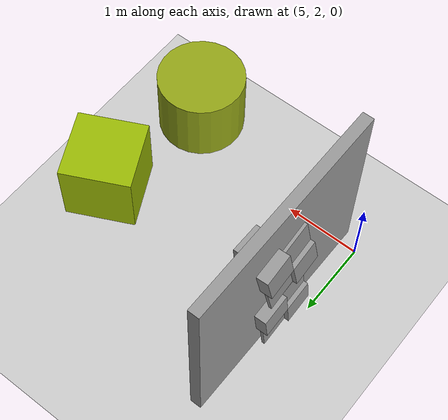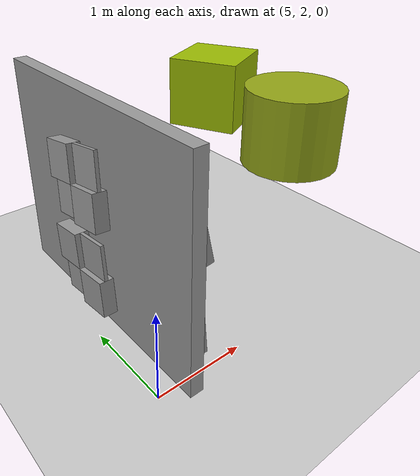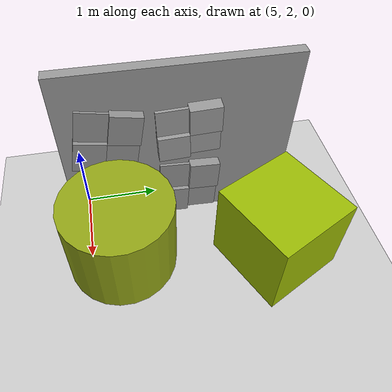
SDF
<sdf version="1.7">
 <world name="default">
  <model name="demo_clean">
   <static>1</static>
   <link name="Wall_10">
    <collision name="Wall_10_Collision">
     <geometry><box><size>3 0.15 2.5</size></box></geometry>
     <pose>0 0 1.25 0 -0 0</pose>
     <surface>
      <friction>
       <ode><mu>1</mu><mu2>1</mu2><fdir1>0 0 0</fdir1><slip1>0</slip1><slip2>0</slip2></ode>
       <torsional>
        <coefficient>1</coefficient>
        <patch_radius>0</patch_radius>
        <surface_radius>0</surface_radius>
        <use_patch_radius>1</use_patch_radius>
        <ode><slip>0</slip></ode>
       </torsional>
      </friction>
      <bounce><restitution_coefficient>0</restitution_coefficient><threshold>1e+06</threshold></bounce>
      <contact>
       <collide_without_contact>0</collide_without_contact>
       <collide_without_contact_bitmask>1</collide_without_contact_bitmask>
       <collide_bitmask>1</collide_bitmask>
       <ode>
        <soft_cfm>0</soft_cfm>
        <soft_erp>0.2</soft_erp>
        <kp>1e+13</kp>
        <kd>1</kd>
        <max_vel>0.01</max_vel>
        <min_depth>0</min_depth>
       </ode>
       <bullet>
        <split_impulse>1</split_impulse>
        <split_impulse_penetration_threshold>-0.01</split_impulse_penetration_threshold>
        <soft_cfm>0</soft_cfm>
        <soft_erp>0.2</soft_erp>
        <kp>1e+13</kp>
        <kd>1</kd>
       </bullet>
      </contact>
     </surface>
    </collision>
    <visual name="Wall_10_Visual">
     <geometry><box><size>3 0.15 2.5</size></box></geometry>
     <material>
      <script><name>Gazebo/Grey</name><uri>file://media/materials/scripts/gazebo.material</uri></script>
      <ambient>1 1 1 1</ambient>
      <shader type="pixel"><normal_map>default</normal_map></shader>
     </material>
     <pose>0 0 1.25 0 -0 0</pose>
    </visual>
    <pose>5.30351 3.31618 0 0 0 -1.5708</pose>
   </link>
  </model>
  <model name="static_cylinder_4">
   <pose>7.08435 2.47073 2 0 -0 0.105393</pose>
   <static>1</static>
   <allow_auto_disable>0</allow_auto_disable>
   <link name="link">
    <collision name="collision">
     <geometry><cylinder><radius>0.5</radius><length>0.8</length></cylinder></geometry>
     <max_contacts>20</max_contacts>
    </collision>
    <visual name="visual">
     <geometry><cylinder><radius>0.5</radius><length>0.8</length></cylinder></geometry>
     <material>
      <ambient>0.580392 0.65098 0.0901961 1</ambient>
      <diffuse>0.580392 0.65098 0.0901961 1</diffuse>
     </material>
    </visual>
   </link>
  </model>
  <model name="dyn_box_9">
   <pose>7.29353 3.8724 2 0 -0 0.454486</pose>
   <static>1</static>
   <allow_auto_disable>0</allow_auto_disable>
   <link name="link">
    <collision name="collision">
     <geometry><box><size>0.8 0.8 0.8</size></box></geometry>
     <max_contacts>20</max_contacts>
    </collision>
    <visual name="visual">
     <geometry><box><size>0.8 0.8 0.8</size></box></geometry>
     <material>
      <ambient>0.611765 0.733333 0.0156863 1</ambient>
      <diffuse>0.611765 0.733333 0.0156863 1</diffuse>
     </material>
    </visual>
   </link>
  </model>
  <model name="ground_plane">
   <static>1</static>
   <link name="link">
    <collision name="collision">
     <geometry><plane><normal>0 0 1</normal><size>100 100</size></plane></geometry>
     <surface>
      <contact><collide_bitmask>65535</collide_bitmask></contact>
      <friction><ode><mu>100</mu><mu2>50</mu2></ode></friction>
     </surface>
    </collision>
    <visual name="visual">
     <cast_shadows>0</cast_shadows>
     <geometry><plane><normal>0 0 1</normal><size>100 100</size></plane></geometry>
     <material>
      <script><uri>file://media/materials/scripts/gazebo.material</uri><name>Gazebo/Grey</name></script>
     </material>
    </visual>
   </link>
  </model>
  <model name="wall_slate_25">
   <static>1</static>
   <link name="link_0">
    <inertial><mass>1</mass></inertial>
    <gravity>0</gravity>
    <visual name="visual">
     <pose>0 0.2 0.2 0 -0 0</pose>
     <geometry><box><size>0.16 0.4 0.4</size></box></geometry>
     <material>
      <lighting>1</lighting>
      <script><uri>file://media/materials/scripts/gazebo.material</uri><name>Gazebo/Grey</name></script>
      <shader type="pixel"><normal_map>__default__</normal_map></shader>
      <ambient>0.3 0.3 0.3 1</ambient>
      <diffuse>0.7 0.7 0.7 1</diffuse>
      <specular>0.01 0.01 0.01 1</specular>
      <emissive>0 0 0 1</emissive>
     </material>
    </visual>
    <visual name="ModelPreview_0::link_0::visual_1">
     <pose>0 0.2 -0.2 0 -0 0</pose>
     <geometry><box><size>0.04 0.4 0.4</size></box></geometry>
     <material>
      <lighting>1</lighting>
      <script><uri>file://media/materials/scripts/gazebo.material</uri><name>Gazebo/Grey</name></script>
      <shader type="pixel"><normal_map>__default__</normal_map></shader>
      <ambient>0.3 0.3 0.3 1</ambient>
      <diffuse>0.7 0.7 0.7 1</diffuse>
      <specular>0.01 0.01 0.01 1</specular>
      <emissive>0 0 0 1</emissive>
     </material>
    </visual>
    <visual name="ModelPreview_0::link_0::visual_2">
     <pose>0 -0.2 0.2 0 -0 0</pose>
     <geometry><box><size>0.04 0.4 0.4</size></box></geometry>
     <material>
      <lighting>1</lighting>
      <script><uri>file://media/materials/scripts/gazebo.material</uri><name>Gazebo/Grey</name></script>
      <shader type="pixel"><normal_map>__default__</normal_map></shader>
      <ambient>0.3 0.3 0.3 1</ambient>
      <diffuse>0.7 0.7 0.7 1</diffuse>
      <specular>0.01 0.01 0.01 1</specular>
      <emissive>0 0 0 1</emissive>
     </material>
    </visual>
    <visual name="ModelPreview_0::link_0::visual_3">
     <pose>0 -0.2 -0.2 0 -0 0</pose>
     <geometry><box><size>0.16 0.4 0.4</size></box></geometry>
     <material>
      <lighting>1</lighting>
      <script><uri>file://media/materials/scripts/gazebo.material</uri><name>Gazebo/Grey</name></script>
      <shader type="pixel"><normal_map>__default__</normal_map></shader>
      <ambient>0.3 0.3 0.3 1</ambient>
      <diffuse>0.7 0.7 0.7 1</diffuse>
      <specular>0.01 0.01 0.01 1</specular>
      <emissive>0 0 0 1</emissive>
     </material>
    </visual>
    <collision name="collision_2">
     <pose>0 -0.2 0.2 0 -0 0</pose>
     <geometry><box><size>0.04 0.4 0.4</size></box></geometry>
     <surface>
      <friction>
       <ode><mu>1</mu><mu2>1</mu2><fdir1>0 0 0</fdir1><slip1>0</slip1><slip2>0</slip2></ode>
       <torsional>
        <coefficient>1</coefficient>
        <patch_radius>0</patch_radius>
        <surface_radius>0</surface_radius>
        <use_patch_radius>1</use_patch_radius>
        <ode><slip>0</slip></ode>
       </torsional>
      </friction>
      <bounce><restitution_coefficient>0</restitution_coefficient><threshold>1e+06</threshold></bounce>
      <contact>
       <collide_without_contact>0</collide_without_contact>
       <collide_without_contact_bitmask>1</collide_without_contact_bitmask>
       <collide_bitmask>1</collide_bitmask>
       <ode>
        <soft_cfm>0</soft_cfm>
        <soft_erp>0.2</soft_erp>
        <kp>1e+13</kp>
        <kd>1</kd>
        <max_vel>0.01</max_vel>
        <min_depth>0</min_depth>
       </ode>
       <bullet>
        <split_impulse>1</split_impulse>
        <split_impulse_penetration_threshold>-0.01</split_impulse_penetration_threshold>
        <soft_cfm>0</soft_cfm>
        <soft_erp>0.2</soft_erp>
        <kp>1e+13</kp>
        <kd>1</kd>
       </bullet>
      </contact>
     </surface>
    </collision>
    <collision name="collision_1">
     <pose>0 0.2 -0.2 0 -0 0</pose>
     <geometry><box><size>0.04 0.4 0.4</size></box></geometry>
     <surface>
      <friction>
       <ode><mu>1</mu><mu2>1</mu2><fdir1>0 0 0</fdir1><slip1>0</slip1><slip2>0</slip2></ode>
       <torsional>
        <coefficient>1</coefficient>
        <patch_radius>0</patch_radius>
        <surface_radius>0</surface_radius>
        <use_patch_radius>1</use_patch_radius>
        <ode><slip>0</slip></ode>
       </torsional>
      </friction>
      <bounce><restitution_coefficient>0</restitution_coefficient><threshold>1e+06</threshold></bounce>
      <contact>
       <collide_without_contact>0</collide_without_contact>
       <collide_without_contact_bitmask>1</collide_without_contact_bitmask>
       <collide_bitmask>1</collide_bitmask>
       <ode>
        <soft_cfm>0</soft_cfm>
        <soft_erp>0.2</soft_erp>
        <kp>1e+13</kp>
        <kd>1</kd>
        <max_vel>0.01</max_vel>
        <min_depth>0</min_depth>
       </ode>
       <bullet>
        <split_impulse>1</split_impulse>
        <split_impulse_penetration_threshold>-0.01</split_impulse_penetration_threshold>
        <soft_cfm>0</soft_cfm>
        <soft_erp>0.2</soft_erp>
        <kp>1e+13</kp>
        <kd>1</kd>
       </bullet>
      </contact>
     </surface>
    </collision>
    <collision name="collision_4">
     <pose>0 0.2 0.2 0 -0 0</pose>
     <geometry><box><size>0.16 0.4 0.4</size></box></geometry>
     <surface>
      <friction>
       <ode><mu>1</mu><mu2>1</mu2><fdir1>0 0 0</fdir1><slip1>0</slip1><slip2>0</slip2></ode>
       <torsional>
        <coefficient>1</coefficient>
        <patch_radius>0</patch_radius>
        <surface_radius>0</surface_radius>
        <use_patch_radius>1</use_patch_radius>
        <ode><slip>0</slip></ode>
       </torsional>
      </friction>
      <bounce><restitution_coefficient>0</restitution_coefficient><threshold>1e+06</threshold></bounce>
      <contact>
       <collide_without_contact>0</collide_without_contact>
       <collide_without_contact_bitmask>1</collide_without_contact_bitmask>
       <collide_bitmask>1</collide_bitmask>
       <ode>
        <soft_cfm>0</soft_cfm>
        <soft_erp>0.2</soft_erp>
        <kp>1e+13</kp>
        <kd>1</kd>
        <max_vel>0.01</max_vel>
        <min_depth>0</min_depth>
       </ode>
       <bullet>
        <split_impulse>1</split_impulse>
        <split_impulse_penetration_threshold>-0.01</split_impulse_penetration_threshold>
        <soft_cfm>0</soft_cfm>
        <soft_erp>0.2</soft_erp>
        <kp>1e+13</kp>
        <kd>1</kd>
       </bullet>
      </contact>
     </surface>
    </collision>
    <collision name="collision_3">
     <pose>0 -0.2 -0.2 0 -0 0</pose>
     <geometry><box><size>0.16 0.4 0.4</size></box></geometry>
     <surface>
      <friction>
       <ode><mu>1</mu><mu2>1</mu2><fdir1>0 0 0</fdir1><slip1>0</slip1><slip2>0</slip2></ode>
       <torsional>
        <coefficient>1</coefficient>
        <patch_radius>0</patch_radius>
        <surface_radius>0</surface_radius>
        <use_patch_radius>1</use_patch_radius>
        <ode><slip>0</slip></ode>
       </torsional>
      </friction>
      <bounce><restitution_coefficient>0</restitution_coefficient><threshold>1e+06</threshold></bounce>
      <contact>
       <collide_without_contact>0</collide_without_contact>
       <collide_without_contact_bitmask>1</collide_without_contact_bitmask>
       <collide_bitmask>1</collide_bitmask>
       <ode>
        <soft_cfm>0</soft_cfm>
        <soft_erp>0.2</soft_erp>
        <kp>1e+13</kp>
        <kd>1</kd>
        <max_vel>0.01</max_vel>
        <min_depth>0</min_depth>
       </ode>
       <bullet>
        <split_impulse>1</split_impulse>
        <split_impulse_penetration_threshold>-0.01</split_impulse_penetration_threshold>
        <soft_cfm>0</soft_cfm>
        <soft_erp>0.2</soft_erp>
        <kp>1e+13</kp>
        <kd>1</kd>
       </bullet>
      </contact>
     </surface>
    </collision>
   </link>
   <pose>5.47851 2.41618 0.6 -0.16 0.04 0.0049</pose>
  </model>
  <model name="wall_slate_36">
   <static>1</static>
   <link name="link_0">
    <inertial><mass>1</mass></inertial>
    <gravity>0</gravity>
    <visual name="visual">
     <pose>0 0.2 0.2 0 -0 0</pose>
     <geometry><box><size>0.16 0.4 0.4</size></box></geometry>
     <material>
      <lighting>1</lighting>
      <script><uri>file://media/materials/scripts/gazebo.material</uri><name>Gazebo/Grey</name></script>
      <shader type="pixel"><normal_map>__default__</normal_map></shader>
      <ambient>0.3 0.3 0.3 1</ambient>
      <diffuse>0.7 0.7 0.7 1</diffuse>
      <specular>0.01 0.01 0.01 1</specular>
      <emissive>0 0 0 1</emissive>
     </material>
    </visual>
    <visual name="ModelPreview_0::link_0::visual_1">
     <pose>0 0.2 -0.2 0 -0 0</pose>
     <geometry><box><size>0.04 0.4 0.4</size></box></geometry>
     <material>
      <lighting>1</lighting>
      <script><uri>file://media/materials/scripts/gazebo.material</uri><name>Gazebo/Grey</name></script>
      <shader type="pixel"><normal_map>__default__</normal_map></shader>
      <ambient>0.3 0.3 0.3 1</ambient>
      <diffuse>0.7 0.7 0.7 1</diffuse>
      <specular>0.01 0.01 0.01 1</specular>
      <emissive>0 0 0 1</emissive>
     </material>
    </visual>
    <visual name="ModelPreview_0::link_0::visual_2">
     <pose>0 -0.2 0.2 0 -0 0</pose>
     <geometry><box><size>0.04 0.4 0.4</size></box></geometry>
     <material>
      <lighting>1</lighting>
      <script><uri>file://media/materials/scripts/gazebo.material</uri><name>Gazebo/Grey</name></script>
      <shader type="pixel"><normal_map>__default__</normal_map></shader>
      <ambient>0.3 0.3 0.3 1</ambient>
      <diffuse>0.7 0.7 0.7 1</diffuse>
      <specular>0.01 0.01 0.01 1</specular>
      <emissive>0 0 0 1</emissive>
     </material>
    </visual>
    <visual name="ModelPreview_0::link_0::visual_3">
     <pose>0 -0.2 -0.2 0 -0 0</pose>
     <geometry><box><size>0.16 0.4 0.4</size></box></geometry>
     <material>
      <lighting>1</lighting>
      <script><uri>file://media/materials/scripts/gazebo.material</uri><name>Gazebo/Grey</name></script>
      <shader type="pixel"><normal_map>__default__</normal_map></shader>
      <ambient>0.3 0.3 0.3 1</ambient>
      <diffuse>0.7 0.7 0.7 1</diffuse>
      <specular>0.01 0.01 0.01 1</specular>
      <emissive>0 0 0 1</emissive>
     </material>
    </visual>
    <collision name="collision_2">
     <pose>0 -0.2 0.2 0 -0 0</pose>
     <geometry><box><size>0.04 0.4 0.4</size></box></geometry>
     <surface>
      <friction>
       <ode><mu>1</mu><mu2>1</mu2><fdir1>0 0 0</fdir1><slip1>0</slip1><slip2>0</slip2></ode>
       <torsional>
        <coefficient>1</coefficient>
        <patch_radius>0</patch_radius>
        <surface_radius>0</surface_radius>
        <use_patch_radius>1</use_patch_radius>
        <ode><slip>0</slip></ode>
       </torsional>
      </friction>
      <bounce><restitution_coefficient>0</restitution_coefficient><threshold>1e+06</threshold></bounce>
      <contact>
       <collide_without_contact>0</collide_without_contact>
       <collide_without_contact_bitmask>1</collide_without_contact_bitmask>
       <collide_bitmask>1</collide_bitmask>
       <ode>
        <soft_cfm>0</soft_cfm>
        <soft_erp>0.2</soft_erp>
        <kp>1e+13</kp>
        <kd>1</kd>
        <max_vel>0.01</max_vel>
        <min_depth>0</min_depth>
       </ode>
       <bullet>
        <split_impulse>1</split_impulse>
        <split_impulse_penetration_threshold>-0.01</split_impulse_penetration_threshold>
        <soft_cfm>0</soft_cfm>
        <soft_erp>0.2</soft_erp>
        <kp>1e+13</kp>
        <kd>1</kd>
       </bullet>
      </contact>
     </surface>
    </collision>
    <collision name="collision_1">
     <pose>0 0.2 -0.2 0 -0 0</pose>
     <geometry><box><size>0.04 0.4 0.4</size></box></geometry>
     <surface>
      <friction>
       <ode><mu>1</mu><mu2>1</mu2><fdir1>0 0 0</fdir1><slip1>0</slip1><slip2>0</slip2></ode>
       <torsional>
        <coefficient>1</coefficient>
        <patch_radius>0</patch_radius>
        <surface_radius>0</surface_radius>
        <use_patch_radius>1</use_patch_radius>
        <ode><slip>0</slip></ode>
       </torsional>
      </friction>
      <bounce><restitution_coefficient>0</restitution_coefficient><threshold>1e+06</threshold></bounce>
      <contact>
       <collide_without_contact>0</collide_without_contact>
       <collide_without_contact_bitmask>1</collide_without_contact_bitmask>
       <collide_bitmask>1</collide_bitmask>
       <ode>
        <soft_cfm>0</soft_cfm>
        <soft_erp>0.2</soft_erp>
        <kp>1e+13</kp>
        <kd>1</kd>
        <max_vel>0.01</max_vel>
        <min_depth>0</min_depth>
       </ode>
       <bullet>
        <split_impulse>1</split_impulse>
        <split_impulse_penetration_threshold>-0.01</split_impulse_penetration_threshold>
        <soft_cfm>0</soft_cfm>
        <soft_erp>0.2</soft_erp>
        <kp>1e+13</kp>
        <kd>1</kd>
       </bullet>
      </contact>
     </surface>
    </collision>
    <collision name="collision_4">
     <pose>0 0.2 0.2 0 -0 0</pose>
     <geometry><box><size>0.16 0.4 0.4</size></box></geometry>
     <surface>
      <friction>
       <ode><mu>1</mu><mu2>1</mu2><fdir1>0 0 0</fdir1><slip1>0</slip1><slip2>0</slip2></ode>
       <torsional>
        <coefficient>1</coefficient>
        <patch_radius>0</patch_radius>
        <surface_radius>0</surface_radius>
        <use_patch_radius>1</use_patch_radius>
        <ode><slip>0</slip></ode>
       </torsional>
      </friction>
      <bounce><restitution_coefficient>0</restitution_coefficient><threshold>1e+06</threshold></bounce>
      <contact>
       <collide_without_contact>0</collide_without_contact>
       <collide_without_contact_bitmask>1</collide_without_contact_bitmask>
       <collide_bitmask>1</collide_bitmask>
       <ode>
        <soft_cfm>0</soft_cfm>
        <soft_erp>0.2</soft_erp>
        <kp>1e+13</kp>
        <kd>1</kd>
        <max_vel>0.01</max_vel>
        <min_depth>0</min_depth>
       </ode>
       <bullet>
        <split_impulse>1</split_impulse>
        <split_impulse_penetration_threshold>-0.01</split_impulse_penetration_threshold>
        <soft_cfm>0</soft_cfm>
        <soft_erp>0.2</soft_erp>
        <kp>1e+13</kp>
        <kd>1</kd>
       </bullet>
      </contact>
     </surface>
    </collision>
    <collision name="collision_3">
     <pose>0 -0.2 -0.2 0 -0 0</pose>
     <geometry><box><size>0.16 0.4 0.4</size></box></geometry>
     <surface>
      <friction>
       <ode><mu>1</mu><mu2>1</mu2><fdir1>0 0 0</fdir1><slip1>0</slip1><slip2>0</slip2></ode>
       <torsional>
        <coefficient>1</coefficient>
        <patch_radius>0</patch_radius>
        <surface_radius>0</surface_radius>
        <use_patch_radius>1</use_patch_radius>
        <ode><slip>0</slip></ode>
       </torsional>
      </friction>
      <bounce><restitution_coefficient>0</restitution_coefficient><threshold>1e+06</threshold></bounce>
      <contact>
       <collide_without_contact>0</collide_without_contact>
       <collide_without_contact_bitmask>1</collide_without_contact_bitmask>
       <collide_bitmask>1</collide_bitmask>
       <ode>
        <soft_cfm>0</soft_cfm>
        <soft_erp>0.2</soft_erp>
        <kp>1e+13</kp>
        <kd>1</kd>
        <max_vel>0.01</max_vel>
        <min_depth>0</min_depth>
       </ode>
       <bullet>
        <split_impulse>1</split_impulse>
        <split_impulse_penetration_threshold>-0.01</split_impulse_penetration_threshold>
        <soft_cfm>0</soft_cfm>
        <soft_erp>0.2</soft_erp>
        <kp>1e+13</kp>
        <kd>1</kd>
       </bullet>
      </contact>
     </surface>
    </collision>
   </link>
   <pose>5.47851 3.41618 0.6 -0.06 -0.08 0.0049</pose>
  </model>
  <model name="wall_slate_45">
   <static>1</static>
   <link name="link_0">
    <inertial><mass>1</mass></inertial>
    <gravity>0</gravity>
    <visual name="visual">
     <pose>0 0.2 0.2 0 -0 0</pose>
     <geometry><box><size>0.16 0.4 0.4</size></box></geometry>
     <material>
      <lighting>1</lighting>
      <script><uri>file://media/materials/scripts/gazebo.material</uri><name>Gazebo/Grey</name></script>
      <shader type="pixel"><normal_map>__default__</normal_map></shader>
      <ambient>0.3 0.3 0.3 1</ambient>
      <diffuse>0.7 0.7 0.7 1</diffuse>
      <specular>0.01 0.01 0.01 1</specular>
      <emissive>0 0 0 1</emissive>
     </material>
    </visual>
    <visual name="ModelPreview_0::link_0::visual_1">
     <pose>0 0.2 -0.2 0 -0 0</pose>
     <geometry><box><size>0.04 0.4 0.4</size></box></geometry>
     <material>
      <lighting>1</lighting>
      <script><uri>file://media/materials/scripts/gazebo.material</uri><name>Gazebo/Grey</name></script>
      <shader type="pixel"><normal_map>__default__</normal_map></shader>
      <ambient>0.3 0.3 0.3 1</ambient>
      <diffuse>0.7 0.7 0.7 1</diffuse>
      <specular>0.01 0.01 0.01 1</specular>
      <emissive>0 0 0 1</emissive>
     </material>
    </visual>
    <visual name="ModelPreview_0::link_0::visual_2">
     <pose>0 -0.2 0.2 0 -0 0</pose>
     <geometry><box><size>0.04 0.4 0.4</size></box></geometry>
     <material>
      <lighting>1</lighting>
      <script><uri>file://media/materials/scripts/gazebo.material</uri><name>Gazebo/Grey</name></script>
      <shader type="pixel"><normal_map>__default__</normal_map></shader>
      <ambient>0.3 0.3 0.3 1</ambient>
      <diffuse>0.7 0.7 0.7 1</diffuse>
      <specular>0.01 0.01 0.01 1</specular>
      <emissive>0 0 0 1</emissive>
     </material>
    </visual>
    <visual name="ModelPreview_0::link_0::visual_3">
     <pose>0 -0.2 -0.2 0 -0 0</pose>
     <geometry><box><size>0.16 0.4 0.4</size></box></geometry>
     <material>
      <lighting>1</lighting>
      <script><uri>file://media/materials/scripts/gazebo.material</uri><name>Gazebo/Grey</name></script>
      <shader type="pixel"><normal_map>__default__</normal_map></shader>
      <ambient>0.3 0.3 0.3 1</ambient>
      <diffuse>0.7 0.7 0.7 1</diffuse>
      <specular>0.01 0.01 0.01 1</specular>
      <emissive>0 0 0 1</emissive>
     </material>
    </visual>
    <collision name="collision_2">
     <pose>0 -0.2 0.2 0 -0 0</pose>
     <geometry><box><size>0.04 0.4 0.4</size></box></geometry>
     <surface>
      <friction>
       <ode><mu>1</mu><mu2>1</mu2><fdir1>0 0 0</fdir1><slip1>0</slip1><slip2>0</slip2></ode>
       <torsional>
        <coefficient>1</coefficient>
        <patch_radius>0</patch_radius>
        <surface_radius>0</surface_radius>
        <use_patch_radius>1</use_patch_radius>
        <ode><slip>0</slip></ode>
       </torsional>
      </friction>
      <bounce><restitution_coefficient>0</restitution_coefficient><threshold>1e+06</threshold></bounce>
      <contact>
       <collide_without_contact>0</collide_without_contact>
       <collide_without_contact_bitmask>1</collide_without_contact_bitmask>
       <collide_bitmask>1</collide_bitmask>
       <ode>
        <soft_cfm>0</soft_cfm>
        <soft_erp>0.2</soft_erp>
        <kp>1e+13</kp>
        <kd>1</kd>
        <max_vel>0.01</max_vel>
        <min_depth>0</min_depth>
       </ode>
       <bullet>
        <split_impulse>1</split_impulse>
        <split_impulse_penetration_threshold>-0.01</split_impulse_penetration_threshold>
        <soft_cfm>0</soft_cfm>
        <soft_erp>0.2</soft_erp>
        <kp>1e+13</kp>
        <kd>1</kd>
       </bullet>
      </contact>
     </surface>
    </collision>
    <collision name="collision_1">
     <pose>0 0.2 -0.2 0 -0 0</pose>
     <geometry><box><size>0.04 0.4 0.4</size></box></geometry>
     <surface>
      <friction>
       <ode><mu>1</mu><mu2>1</mu2><fdir1>0 0 0</fdir1><slip1>0</slip1><slip2>0</slip2></ode>
       <torsional>
        <coefficient>1</coefficient>
        <patch_radius>0</patch_radius>
        <surface_radius>0</surface_radius>
        <use_patch_radius>1</use_patch_radius>
        <ode><slip>0</slip></ode>
       </torsional>
      </friction>
      <bounce><restitution_coefficient>0</restitution_coefficient><threshold>1e+06</threshold></bounce>
      <contact>
       <collide_without_contact>0</collide_without_contact>
       <collide_without_contact_bitmask>1</collide_without_contact_bitmask>
       <collide_bitmask>1</collide_bitmask>
       <ode>
        <soft_cfm>0</soft_cfm>
        <soft_erp>0.2</soft_erp>
        <kp>1e+13</kp>
        <kd>1</kd>
        <max_vel>0.01</max_vel>
        <min_depth>0</min_depth>
       </ode>
       <bullet>
        <split_impulse>1</split_impulse>
        <split_impulse_penetration_threshold>-0.01</split_impulse_penetration_threshold>
        <soft_cfm>0</soft_cfm>
        <soft_erp>0.2</soft_erp>
        <kp>1e+13</kp>
        <kd>1</kd>
       </bullet>
      </contact>
     </surface>
    </collision>
    <collision name="collision_4">
     <pose>0 0.2 0.2 0 -0 0</pose>
     <geometry><box><size>0.16 0.4 0.4</size></box></geometry>
     <surface>
      <friction>
       <ode><mu>1</mu><mu2>1</mu2><fdir1>0 0 0</fdir1><slip1>0</slip1><slip2>0</slip2></ode>
       <torsional>
        <coefficient>1</coefficient>
        <patch_radius>0</patch_radius>
        <surface_radius>0</surface_radius>
        <use_patch_radius>1</use_patch_radius>
        <ode><slip>0</slip></ode>
       </torsional>
      </friction>
      <bounce><restitution_coefficient>0</restitution_coefficient><threshold>1e+06</threshold></bounce>
      <contact>
       <collide_without_contact>0</collide_without_contact>
       <collide_without_contact_bitmask>1</collide_without_contact_bitmask>
       <collide_bitmask>1</collide_bitmask>
       <ode>
        <soft_cfm>0</soft_cfm>
        <soft_erp>0.2</soft_erp>
        <kp>1e+13</kp>
        <kd>1</kd>
        <max_vel>0.01</max_vel>
        <min_depth>0</min_depth>
       </ode>
       <bullet>
        <split_impulse>1</split_impulse>
        <split_impulse_penetration_threshold>-0.01</split_impulse_penetration_threshold>
        <soft_cfm>0</soft_cfm>
        <soft_erp>0.2</soft_erp>
        <kp>1e+13</kp>
        <kd>1</kd>
       </bullet>
      </contact>
     </surface>
    </collision>
    <collision name="collision_3">
     <pose>0 -0.2 -0.2 0 -0 0</pose>
     <geometry><box><size>0.16 0.4 0.4</size></box></geometry>
     <surface>
      <friction>
       <ode><mu>1</mu><mu2>1</mu2><fdir1>0 0 0</fdir1><slip1>0</slip1><slip2>0</slip2></ode>
       <torsional>
        <coefficient>1</coefficient>
        <patch_radius>0</patch_radius>
        <surface_radius>0</surface_radius>
        <use_patch_radius>1</use_patch_radius>
        <ode><slip>0</slip></ode>
       </torsional>
      </friction>
      <bounce><restitution_coefficient>0</restitution_coefficient><threshold>1e+06</threshold></bounce>
      <contact>
       <collide_without_contact>0</collide_without_contact>
       <collide_without_contact_bitmask>1</collide_without_contact_bitmask>
       <collide_bitmask>1</collide_bitmask>
       <ode>
        <soft_cfm>0</soft_cfm>
        <soft_erp>0.2</soft_erp>
        <kp>1e+13</kp>
        <kd>1</kd>
        <max_vel>0.01</max_vel>
        <min_depth>0</min_depth>
       </ode>
       <bullet>
        <split_impulse>1</split_impulse>
        <split_impulse_penetration_threshold>-0.01</split_impulse_penetration_threshold>
        <soft_cfm>0</soft_cfm>
        <soft_erp>0.2</soft_erp>
        <kp>1e+13</kp>
        <kd>1</kd>
       </bullet>
      </contact>
     </surface>
    </collision>
   </link>
   <pose>5.47851 3.41618 1.6 0.04 0.08 0.0049</pose>
  </model>
  <model name="wall_slate_49">
   <static>1</static>
   <link name="link_0">
    <inertial><mass>1</mass></inertial>
    <gravity>0</gravity>
    <visual name="visual">
     <pose>0 0.2 0.2 0 -0 0</pose>
     <geometry><box><size>0.16 0.4 0.4</size></box></geometry>
     <material>
      <lighting>1</lighting>
      <script><uri>file://media/materials/scripts/gazebo.material</uri><name>Gazebo/Grey</name></script>
      <shader type="pixel"><normal_map>__default__</normal_map></shader>
      <ambient>0.3 0.3 0.3 1</ambient>
      <diffuse>0.7 0.7 0.7 1</diffuse>
      <specular>0.01 0.01 0.01 1</specular>
      <emissive>0 0 0 1</emissive>
     </material>
    </visual>
    <visual name="ModelPreview_0::link_0::visual_1">
     <pose>0 0.2 -0.2 0 -0 0</pose>
     <geometry><box><size>0.04 0.4 0.4</size></box></geometry>
     <material>
      <lighting>1</lighting>
      <script><uri>file://media/materials/scripts/gazebo.material</uri><name>Gazebo/Grey</name></script>
      <shader type="pixel"><normal_map>__default__</normal_map></shader>
      <ambient>0.3 0.3 0.3 1</ambient>
      <diffuse>0.7 0.7 0.7 1</diffuse>
      <specular>0.01 0.01 0.01 1</specular>
      <emissive>0 0 0 1</emissive>
     </material>
    </visual>
    <visual name="ModelPreview_0::link_0::visual_2">
     <pose>0 -0.2 0.2 0 -0 0</pose>
     <geometry><box><size>0.04 0.4 0.4</size></box></geometry>
     <material>
      <lighting>1</lighting>
      <script><uri>file://media/materials/scripts/gazebo.material</uri><name>Gazebo/Grey</name></script>
      <shader type="pixel"><normal_map>__default__</normal_map></shader>
      <ambient>0.3 0.3 0.3 1</ambient>
      <diffuse>0.7 0.7 0.7 1</diffuse>
      <specular>0.01 0.01 0.01 1</specular>
      <emissive>0 0 0 1</emissive>
     </material>
    </visual>
    <visual name="ModelPreview_0::link_0::visual_3">
     <pose>0 -0.2 -0.2 0 -0 0</pose>
     <geometry><box><size>0.16 0.4 0.4</size></box></geometry>
     <material>
      <lighting>1</lighting>
      <script><uri>file://media/materials/scripts/gazebo.material</uri><name>Gazebo/Grey</name></script>
      <shader type="pixel"><normal_map>__default__</normal_map></shader>
      <ambient>0.3 0.3 0.3 1</ambient>
      <diffuse>0.7 0.7 0.7 1</diffuse>
      <specular>0.01 0.01 0.01 1</specular>
      <emissive>0 0 0 1</emissive>
     </material>
    </visual>
    <collision name="collision_2">
     <pose>0 -0.2 0.2 0 -0 0</pose>
     <geometry><box><size>0.04 0.4 0.4</size></box></geometry>
     <surface>
      <friction>
       <ode><mu>1</mu><mu2>1</mu2><fdir1>0 0 0</fdir1><slip1>0</slip1><slip2>0</slip2></ode>
       <torsional>
        <coefficient>1</coefficient>
        <patch_radius>0</patch_radius>
        <surface_radius>0</surface_radius>
        <use_patch_radius>1</use_patch_radius>
        <ode><slip>0</slip></ode>
       </torsional>
      </friction>
      <bounce><restitution_coefficient>0</restitution_coefficient><threshold>1e+06</threshold></bounce>
      <contact>
       <collide_without_contact>0</collide_without_contact>
       <collide_without_contact_bitmask>1</collide_without_contact_bitmask>
       <collide_bitmask>1</collide_bitmask>
       <ode>
        <soft_cfm>0</soft_cfm>
        <soft_erp>0.2</soft_erp>
        <kp>1e+13</kp>
        <kd>1</kd>
        <max_vel>0.01</max_vel>
        <min_depth>0</min_depth>
       </ode>
       <bullet>
        <split_impulse>1</split_impulse>
        <split_impulse_penetration_threshold>-0.01</split_impulse_penetration_threshold>
        <soft_cfm>0</soft_cfm>
        <soft_erp>0.2</soft_erp>
        <kp>1e+13</kp>
        <kd>1</kd>
       </bullet>
      </contact>
     </surface>
    </collision>
    <collision name="collision_1">
     <pose>0 0.2 -0.2 0 -0 0</pose>
     <geometry><box><size>0.04 0.4 0.4</size></box></geometry>
     <surface>
      <friction>
       <ode><mu>1</mu><mu2>1</mu2><fdir1>0 0 0</fdir1><slip1>0</slip1><slip2>0</slip2></ode>
       <torsional>
        <coefficient>1</coefficient>
        <patch_radius>0</patch_radius>
        <surface_radius>0</surface_radius>
        <use_patch_radius>1</use_patch_radius>
        <ode><slip>0</slip></ode>
       </torsional>
      </friction>
      <bounce><restitution_coefficient>0</restitution_coefficient><threshold>1e+06</threshold></bounce>
      <contact>
       <collide_without_contact>0</collide_without_contact>
       <collide_without_contact_bitmask>1</collide_without_contact_bitmask>
       <collide_bitmask>1</collide_bitmask>
       <ode>
        <soft_cfm>0</soft_cfm>
        <soft_erp>0.2</soft_erp>
        <kp>1e+13</kp>
        <kd>1</kd>
        <max_vel>0.01</max_vel>
        <min_depth>0</min_depth>
       </ode>
       <bullet>
        <split_impulse>1</split_impulse>
        <split_impulse_penetration_threshold>-0.01</split_impulse_penetration_threshold>
        <soft_cfm>0</soft_cfm>
        <soft_erp>0.2</soft_erp>
        <kp>1e+13</kp>
        <kd>1</kd>
       </bullet>
      </contact>
     </surface>
    </collision>
    <collision name="collision_4">
     <pose>0 0.2 0.2 0 -0 0</pose>
     <geometry><box><size>0.16 0.4 0.4</size></box></geometry>
     <surface>
      <friction>
       <ode><mu>1</mu><mu2>1</mu2><fdir1>0 0 0</fdir1><slip1>0</slip1><slip2>0</slip2></ode>
       <torsional>
        <coefficient>1</coefficient>
        <patch_radius>0</patch_radius>
        <surface_radius>0</surface_radius>
        <use_patch_radius>1</use_patch_radius>
        <ode><slip>0</slip></ode>
       </torsional>
      </friction>
      <bounce><restitution_coefficient>0</restitution_coefficient><threshold>1e+06</threshold></bounce>
      <contact>
       <collide_without_contact>0</collide_without_contact>
       <collide_without_contact_bitmask>1</collide_without_contact_bitmask>
       <collide_bitmask>1</collide_bitmask>
       <ode>
        <soft_cfm>0</soft_cfm>
        <soft_erp>0.2</soft_erp>
        <kp>1e+13</kp>
        <kd>1</kd>
        <max_vel>0.01</max_vel>
        <min_depth>0</min_depth>
       </ode>
       <bullet>
        <split_impulse>1</split_impulse>
        <split_impulse_penetration_threshold>-0.01</split_impulse_penetration_threshold>
        <soft_cfm>0</soft_cfm>
        <soft_erp>0.2</soft_erp>
        <kp>1e+13</kp>
        <kd>1</kd>
       </bullet>
      </contact>
     </surface>
    </collision>
    <collision name="collision_3">
     <pose>0 -0.2 -0.2 0 -0 0</pose>
     <geometry><box><size>0.16 0.4 0.4</size></box></geometry>
     <surface>
      <friction>
       <ode><mu>1</mu><mu2>1</mu2><fdir1>0 0 0</fdir1><slip1>0</slip1><slip2>0</slip2></ode>
       <torsional>
        <coefficient>1</coefficient>
        <patch_radius>0</patch_radius>
        <surface_radius>0</surface_radius>
        <use_patch_radius>1</use_patch_radius>
        <ode><slip>0</slip></ode>
       </torsional>
      </friction>
      <bounce><restitution_coefficient>0</restitution_coefficient><threshold>1e+06</threshold></bounce>
      <contact>
       <collide_without_contact>0</collide_without_contact>
       <collide_without_contact_bitmask>1</collide_without_contact_bitmask>
       <collide_bitmask>1</collide_bitmask>
       <ode>
        <soft_cfm>0</soft_cfm>
        <soft_erp>0.2</soft_erp>
        <kp>1e+13</kp>
        <kd>1</kd>
        <max_vel>0.01</max_vel>
        <min_depth>0</min_depth>
       </ode>
       <bullet>
        <split_impulse>1</split_impulse>
        <split_impulse_penetration_threshold>-0.01</split_impulse_penetration_threshold>
        <soft_cfm>0</soft_cfm>
        <soft_erp>0.2</soft_erp>
        <kp>1e+13</kp>
        <kd>1</kd>
       </bullet>
      </contact>
     </surface>
    </collision>
   </link>
   <pose>5.12851 3.41618 0.6 -0.12 0.02 0.0049</pose>
  </model>
  <model name="wall_slate_73">
   <static>1</static>
   <link name="link_0">
    <inertial><mass>1</mass></inertial>
    <gravity>0</gravity>
    <visual name="visual">
     <pose>0 0.2 0.2 0 -0 0</pose>
     <geometry><box><size>0.16 0.4 0.4</size></box></geometry>
     <material>
      <lighting>1</lighting>
      <script><uri>file://media/materials/scripts/gazebo.material</uri><name>Gazebo/Grey</name></script>
      <shader type="pixel"><normal_map>__default__</normal_map></shader>
      <ambient>0.3 0.3 0.3 1</ambient>
      <diffuse>0.7 0.7 0.7 1</diffuse>
      <specular>0.01 0.01 0.01 1</specular>
      <emissive>0 0 0 1</emissive>
     </material>
    </visual>
    <visual name="ModelPreview_0::link_0::visual_1">
     <pose>0 0.2 -0.2 0 -0 0</pose>
     <geometry><box><size>0.04 0.4 0.4</size></box></geometry>
     <material>
      <lighting>1</lighting>
      <script><uri>file://media/materials/scripts/gazebo.material</uri><name>Gazebo/Grey</name></script>
      <shader type="pixel"><normal_map>__default__</normal_map></shader>
      <ambient>0.3 0.3 0.3 1</ambient>
      <diffuse>0.7 0.7 0.7 1</diffuse>
      <specular>0.01 0.01 0.01 1</specular>
      <emissive>0 0 0 1</emissive>
     </material>
    </visual>
    <visual name="ModelPreview_0::link_0::visual_2">
     <pose>0 -0.2 0.2 0 -0 0</pose>
     <geometry><box><size>0.04 0.4 0.4</size></box></geometry>
     <material>
      <lighting>1</lighting>
      <script><uri>file://media/materials/scripts/gazebo.material</uri><name>Gazebo/Grey</name></script>
      <shader type="pixel"><normal_map>__default__</normal_map></shader>
      <ambient>0.3 0.3 0.3 1</ambient>
      <diffuse>0.7 0.7 0.7 1</diffuse>
      <specular>0.01 0.01 0.01 1</specular>
      <emissive>0 0 0 1</emissive>
     </material>
    </visual>
    <visual name="ModelPreview_0::link_0::visual_3">
     <pose>0 -0.2 -0.2 0 -0 0</pose>
     <geometry><box><size>0.16 0.4 0.4</size></box></geometry>
     <material>
      <lighting>1</lighting>
      <script><uri>file://media/materials/scripts/gazebo.material</uri><name>Gazebo/Grey</name></script>
      <shader type="pixel"><normal_map>__default__</normal_map></shader>
      <ambient>0.3 0.3 0.3 1</ambient>
      <diffuse>0.7 0.7 0.7 1</diffuse>
      <specular>0.01 0.01 0.01 1</specular>
      <emissive>0 0 0 1</emissive>
     </material>
    </visual>
    <collision name="collision_2">
     <pose>0 -0.2 0.2 0 -0 0</pose>
     <geometry><box><size>0.04 0.4 0.4</size></box></geometry>
     <surface>
      <friction>
       <ode><mu>1</mu><mu2>1</mu2><fdir1>0 0 0</fdir1><slip1>0</slip1><slip2>0</slip2></ode>
       <torsional>
        <coefficient>1</coefficient>
        <patch_radius>0</patch_radius>
        <surface_radius>0</surface_radius>
        <use_patch_radius>1</use_patch_radius>
        <ode><slip>0</slip></ode>
       </torsional>
      </friction>
      <bounce><restitution_coefficient>0</restitution_coefficient><threshold>1e+06</threshold></bounce>
      <contact>
       <collide_without_contact>0</collide_without_contact>
       <collide_without_contact_bitmask>1</collide_without_contact_bitmask>
       <collide_bitmask>1</collide_bitmask>
       <ode>
        <soft_cfm>0</soft_cfm>
        <soft_erp>0.2</soft_erp>
        <kp>1e+13</kp>
        <kd>1</kd>
        <max_vel>0.01</max_vel>
        <min_depth>0</min_depth>
       </ode>
       <bullet>
        <split_impulse>1</split_impulse>
        <split_impulse_penetration_threshold>-0.01</split_impulse_penetration_threshold>
        <soft_cfm>0</soft_cfm>
        <soft_erp>0.2</soft_erp>
        <kp>1e+13</kp>
        <kd>1</kd>
       </bullet>
      </contact>
     </surface>
    </collision>
    <collision name="collision_1">
     <pose>0 0.2 -0.2 0 -0 0</pose>
     <geometry><box><size>0.04 0.4 0.4</size></box></geometry>
     <surface>
      <friction>
       <ode><mu>1</mu><mu2>1</mu2><fdir1>0 0 0</fdir1><slip1>0</slip1><slip2>0</slip2></ode>
       <torsional>
        <coefficient>1</coefficient>
        <patch_radius>0</patch_radius>
        <surface_radius>0</surface_radius>
        <use_patch_radius>1</use_patch_radius>
        <ode><slip>0</slip></ode>
       </torsional>
      </friction>
      <bounce><restitution_coefficient>0</restitution_coefficient><threshold>1e+06</threshold></bounce>
      <contact>
       <collide_without_contact>0</collide_without_contact>
       <collide_without_contact_bitmask>1</collide_without_contact_bitmask>
       <collide_bitmask>1</collide_bitmask>
       <ode>
        <soft_cfm>0</soft_cfm>
        <soft_erp>0.2</soft_erp>
        <kp>1e+13</kp>
        <kd>1</kd>
        <max_vel>0.01</max_vel>
        <min_depth>0</min_depth>
       </ode>
       <bullet>
        <split_impulse>1</split_impulse>
        <split_impulse_penetration_threshold>-0.01</split_impulse_penetration_threshold>
        <soft_cfm>0</soft_cfm>
        <soft_erp>0.2</soft_erp>
        <kp>1e+13</kp>
        <kd>1</kd>
       </bullet>
      </contact>
     </surface>
    </collision>
    <collision name="collision_4">
     <pose>0 0.2 0.2 0 -0 0</pose>
     <geometry><box><size>0.16 0.4 0.4</size></box></geometry>
     <surface>
      <friction>
       <ode><mu>1</mu><mu2>1</mu2><fdir1>0 0 0</fdir1><slip1>0</slip1><slip2>0</slip2></ode>
       <torsional>
        <coefficient>1</coefficient>
        <patch_radius>0</patch_radius>
        <surface_radius>0</surface_radius>
        <use_patch_radius>1</use_patch_radius>
        <ode><slip>0</slip></ode>
       </torsional>
      </friction>
      <bounce><restitution_coefficient>0</restitution_coefficient><threshold>1e+06</threshold></bounce>
      <contact>
       <collide_without_contact>0</collide_without_contact>
       <collide_without_contact_bitmask>1</collide_without_contact_bitmask>
       <collide_bitmask>1</collide_bitmask>
       <ode>
        <soft_cfm>0</soft_cfm>
        <soft_erp>0.2</soft_erp>
        <kp>1e+13</kp>
        <kd>1</kd>
        <max_vel>0.01</max_vel>
        <min_depth>0</min_depth>
       </ode>
       <bullet>
        <split_impulse>1</split_impulse>
        <split_impulse_penetration_threshold>-0.01</split_impulse_penetration_threshold>
        <soft_cfm>0</soft_cfm>
        <soft_erp>0.2</soft_erp>
        <kp>1e+13</kp>
        <kd>1</kd>
       </bullet>
      </contact>
     </surface>
    </collision>
    <collision name="collision_3">
     <pose>0 -0.2 -0.2 0 -0 0</pose>
     <geometry><box><size>0.16 0.4 0.4</size></box></geometry>
     <surface>
      <friction>
       <ode><mu>1</mu><mu2>1</mu2><fdir1>0 0 0</fdir1><slip1>0</slip1><slip2>0</slip2></ode>
       <torsional>
        <coefficient>1</coefficient>
        <patch_radius>0</patch_radius>
        <surface_radius>0</surface_radius>
        <use_patch_radius>1</use_patch_radius>
        <ode><slip>0</slip></ode>
       </torsional>
      </friction>
      <bounce><restitution_coefficient>0</restitution_coefficient><threshold>1e+06</threshold></bounce>
      <contact>
       <collide_without_contact>0</collide_without_contact>
       <collide_without_contact_bitmask>1</collide_without_contact_bitmask>
       <collide_bitmask>1</collide_bitmask>
       <ode>
        <soft_cfm>0</soft_cfm>
        <soft_erp>0.2</soft_erp>
        <kp>1e+13</kp>
        <kd>1</kd>
        <max_vel>0.01</max_vel>
        <min_depth>0</min_depth>
       </ode>
       <bullet>
        <split_impulse>1</split_impulse>
        <split_impulse_penetration_threshold>-0.01</split_impulse_penetration_threshold>
        <soft_cfm>0</soft_cfm>
        <soft_erp>0.2</soft_erp>
        <kp>1e+13</kp>
        <kd>1</kd>
       </bullet>
      </contact>
     </surface>
    </collision>
   </link>
   <pose>5.47851 2.41618 1.6 -0.18 -0.1 0.0049</pose>
  </model>
  <model name="wall_slate_92">
   <static>1</static>
   <link name="link_0">
    <inertial><mass>1</mass></inertial>
    <gravity>0</gravity>
    <visual name="visual">
     <pose>0 0.2 0.2 0 -0 0</pose>
     <geometry><box><size>0.16 0.4 0.4</size></box></geometry>
     <material>
      <lighting>1</lighting>
      <script><uri>file://media/materials/scripts/gazebo.material</uri><name>Gazebo/Grey</name></script>
      <shader type="pixel"><normal_map>__default__</normal_map></shader>
      <ambient>0.3 0.3 0.3 1</ambient>
      <diffuse>0.7 0.7 0.7 1</diffuse>
      <specular>0.01 0.01 0.01 1</specular>
      <emissive>0 0 0 1</emissive>
     </material>
    </visual>
    <visual name="ModelPreview_0::link_0::visual_1">
     <pose>0 0.2 -0.2 0 -0 0</pose>
     <geometry><box><size>0.04 0.4 0.4</size></box></geometry>
     <material>
      <lighting>1</lighting>
      <script><uri>file://media/materials/scripts/gazebo.material</uri><name>Gazebo/Grey</name></script>
      <shader type="pixel"><normal_map>__default__</normal_map></shader>
      <ambient>0.3 0.3 0.3 1</ambient>
      <diffuse>0.7 0.7 0.7 1</diffuse>
      <specular>0.01 0.01 0.01 1</specular>
      <emissive>0 0 0 1</emissive>
     </material>
    </visual>
    <visual name="ModelPreview_0::link_0::visual_2">
     <pose>0 -0.2 0.2 0 -0 0</pose>
     <geometry><box><size>0.04 0.4 0.4</size></box></geometry>
     <material>
      <lighting>1</lighting>
      <script><uri>file://media/materials/scripts/gazebo.material</uri><name>Gazebo/Grey</name></script>
      <shader type="pixel"><normal_map>__default__</normal_map></shader>
      <ambient>0.3 0.3 0.3 1</ambient>
      <diffuse>0.7 0.7 0.7 1</diffuse>
      <specular>0.01 0.01 0.01 1</specular>
      <emissive>0 0 0 1</emissive>
     </material>
    </visual>
    <visual name="ModelPreview_0::link_0::visual_3">
     <pose>0 -0.2 -0.2 0 -0 0</pose>
     <geometry><box><size>0.16 0.4 0.4</size></box></geometry>
     <material>
      <lighting>1</lighting>
      <script><uri>file://media/materials/scripts/gazebo.material</uri><name>Gazebo/Grey</name></script>
      <shader type="pixel"><normal_map>__default__</normal_map></shader>
      <ambient>0.3 0.3 0.3 1</ambient>
      <diffuse>0.7 0.7 0.7 1</diffuse>
      <specular>0.01 0.01 0.01 1</specular>
      <emissive>0 0 0 1</emissive>
     </material>
    </visual>
    <collision name="collision_2">
     <pose>0 -0.2 0.2 0 -0 0</pose>
     <geometry><box><size>0.04 0.4 0.4</size></box></geometry>
     <surface>
      <friction>
       <ode><mu>1</mu><mu2>1</mu2><fdir1>0 0 0</fdir1><slip1>0</slip1><slip2>0</slip2></ode>
       <torsional>
        <coefficient>1</coefficient>
        <patch_radius>0</patch_radius>
        <surface_radius>0</surface_radius>
        <use_patch_radius>1</use_patch_radius>
        <ode><slip>0</slip></ode>
       </torsional>
      </friction>
      <bounce><restitution_coefficient>0</restitution_coefficient><threshold>1e+06</threshold></bounce>
      <contact>
       <collide_without_contact>0</collide_without_contact>
       <collide_without_contact_bitmask>1</collide_without_contact_bitmask>
       <collide_bitmask>1</collide_bitmask>
       <ode>
        <soft_cfm>0</soft_cfm>
        <soft_erp>0.2</soft_erp>
        <kp>1e+13</kp>
        <kd>1</kd>
        <max_vel>0.01</max_vel>
        <min_depth>0</min_depth>
       </ode>
       <bullet>
        <split_impulse>1</split_impulse>
        <split_impulse_penetration_threshold>-0.01</split_impulse_penetration_threshold>
        <soft_cfm>0</soft_cfm>
        <soft_erp>0.2</soft_erp>
        <kp>1e+13</kp>
        <kd>1</kd>
       </bullet>
      </contact>
     </surface>
    </collision>
    <collision name="collision_1">
     <pose>0 0.2 -0.2 0 -0 0</pose>
     <geometry><box><size>0.04 0.4 0.4</size></box></geometry>
     <surface>
      <friction>
       <ode><mu>1</mu><mu2>1</mu2><fdir1>0 0 0</fdir1><slip1>0</slip1><slip2>0</slip2></ode>
       <torsional>
        <coefficient>1</coefficient>
        <patch_radius>0</patch_radius>
        <surface_radius>0</surface_radius>
        <use_patch_radius>1</use_patch_radius>
        <ode><slip>0</slip></ode>
       </torsional>
      </friction>
      <bounce><restitution_coefficient>0</restitution_coefficient><threshold>1e+06</threshold></bounce>
      <contact>
       <collide_without_contact>0</collide_without_contact>
       <collide_without_contact_bitmask>1</collide_without_contact_bitmask>
       <collide_bitmask>1</collide_bitmask>
       <ode>
        <soft_cfm>0</soft_cfm>
        <soft_erp>0.2</soft_erp>
        <kp>1e+13</kp>
        <kd>1</kd>
        <max_vel>0.01</max_vel>
        <min_depth>0</min_depth>
       </ode>
       <bullet>
        <split_impulse>1</split_impulse>
        <split_impulse_penetration_threshold>-0.01</split_impulse_penetration_threshold>
        <soft_cfm>0</soft_cfm>
        <soft_erp>0.2</soft_erp>
        <kp>1e+13</kp>
        <kd>1</kd>
       </bullet>
      </contact>
     </surface>
    </collision>
    <collision name="collision_4">
     <pose>0 0.2 0.2 0 -0 0</pose>
     <geometry><box><size>0.16 0.4 0.4</size></box></geometry>
     <surface>
      <friction>
       <ode><mu>1</mu><mu2>1</mu2><fdir1>0 0 0</fdir1><slip1>0</slip1><slip2>0</slip2></ode>
       <torsional>
        <coefficient>1</coefficient>
        <patch_radius>0</patch_radius>
        <surface_radius>0</surface_radius>
        <use_patch_radius>1</use_patch_radius>
        <ode><slip>0</slip></ode>
       </torsional>
      </friction>
      <bounce><restitution_coefficient>0</restitution_coefficient><threshold>1e+06</threshold></bounce>
      <contact>
       <collide_without_contact>0</collide_without_contact>
       <collide_without_contact_bitmask>1</collide_without_contact_bitmask>
       <collide_bitmask>1</collide_bitmask>
       <ode>
        <soft_cfm>0</soft_cfm>
        <soft_erp>0.2</soft_erp>
        <kp>1e+13</kp>
        <kd>1</kd>
        <max_vel>0.01</max_vel>
        <min_depth>0</min_depth>
       </ode>
       <bullet>
        <split_impulse>1</split_impulse>
        <split_impulse_penetration_threshold>-0.01</split_impulse_penetration_threshold>
        <soft_cfm>0</soft_cfm>
        <soft_erp>0.2</soft_erp>
        <kp>1e+13</kp>
        <kd>1</kd>
       </bullet>
      </contact>
     </surface>
    </collision>
    <collision name="collision_3">
     <pose>0 -0.2 -0.2 0 -0 0</pose>
     <geometry><box><size>0.16 0.4 0.4</size></box></geometry>
     <surface>
      <friction>
       <ode><mu>1</mu><mu2>1</mu2><fdir1>0 0 0</fdir1><slip1>0</slip1><slip2>0</slip2></ode>
       <torsional>
        <coefficient>1</coefficient>
        <patch_radius>0</patch_radius>
        <surface_radius>0</surface_radius>
        <use_patch_radius>1</use_patch_radius>
        <ode><slip>0</slip></ode>
       </torsional>
      </friction>
      <bounce><restitution_coefficient>0</restitution_coefficient><threshold>1e+06</threshold></bounce>
      <contact>
       <collide_without_contact>0</collide_without_contact>
       <collide_without_contact_bitmask>1</collide_without_contact_bitmask>
       <collide_bitmask>1</collide_bitmask>
       <ode>
        <soft_cfm>0</soft_cfm>
        <soft_erp>0.2</soft_erp>
        <kp>1e+13</kp>
        <kd>1</kd>
        <max_vel>0.01</max_vel>
        <min_depth>0</min_depth>
       </ode>
       <bullet>
        <split_impulse>1</split_impulse>
        <split_impulse_penetration_threshold>-0.01</split_impulse_penetration_threshold>
        <soft_cfm>0</soft_cfm>
        <soft_erp>0.2</soft_erp>
        <kp>1e+13</kp>
        <kd>1</kd>
       </bullet>
      </contact>
     </surface>
    </collision>
   </link>
   <pose>5.12851 3.41618 1.6 -0.16 0.08 0.0049</pose>
  </model>
 </world>
</sdf>
